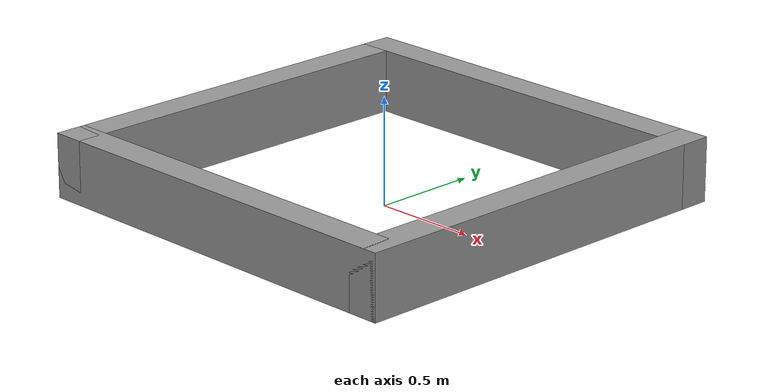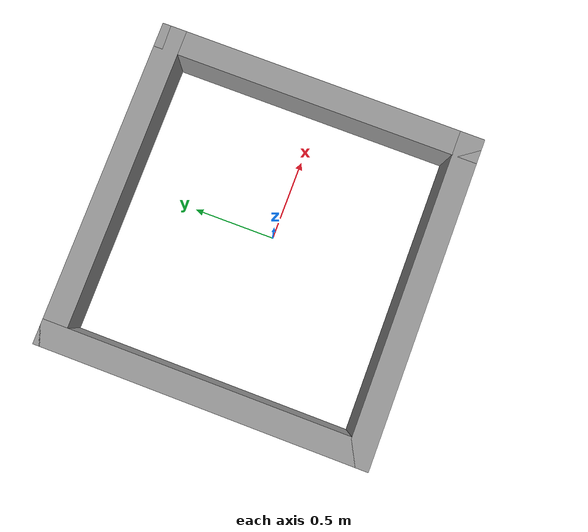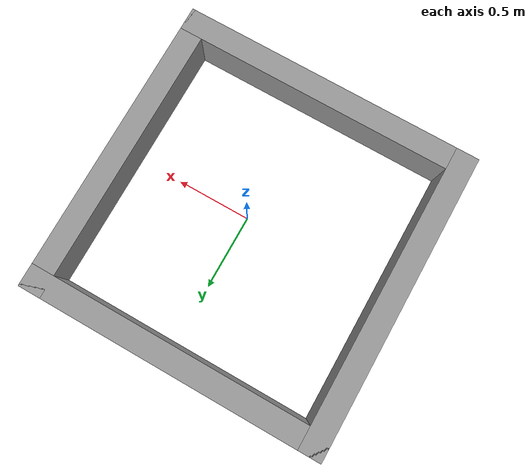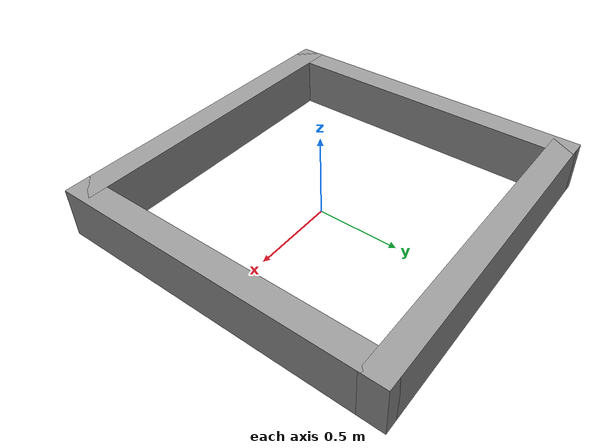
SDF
<?xml version='1.0'?>
<sdf version='1.6'>
  <model name='box'>
    <pose frame=''>-0.065 0.045 0 0 -0 0</pose>
    <link name='Wall_19'>
      <collision name='Wall_19_Collision'>
        <geometry>
          <box>
            <size>2 0.15 0.3</size>
          </box>
        </geometry>
        <pose frame=''>0 0 0.15 0 -0 0</pose>
      </collision>
      <visual name='Wall_19_Visual'>
        <pose frame=''>0 0 0.15 0 -0 0</pose>
        <geometry>
          <box>
            <size>2 0.15 0.3</size>
          </box>
        </geometry>
        <material>
          <script>
            <uri>file://media/materials/scripts/gazebo.material</uri>
            <name>Gazebo/Grey</name>
          </script>
          <ambient>1 1 1 1</ambient>
        </material>
        <meta>
          <layer>0</layer>
        </meta>
      </visual>
      <pose frame=''>0 0.925 0 0 -0 0</pose>
    </link>
    <link name='Wall_25'>
      <collision name='Wall_25_Collision'>
        <geometry>
          <box>
            <size>2 0.15 0.3</size>
          </box>
        </geometry>
        <pose frame=''>0 0 0.15 0 -0 0</pose>
      </collision>
      <visual name='Wall_25_Visual'>
        <pose frame=''>0 0 0.15 0 -0 0</pose>
        <geometry>
          <box>
            <size>2 0.15 0.3</size>
          </box>
        </geometry>
        <material>
          <script>
            <uri>file://media/materials/scripts/gazebo.material</uri>
            <name>Gazebo/Grey</name>
          </script>
          <ambient>1 1 1 1</ambient>
        </material>
        <meta>
          <layer>0</layer>
        </meta>
      </visual>
      <pose frame=''>-0.925 0 0 0 -0 -1.5708</pose>
    </link>
    <link name='Wall_26'>
      <collision name='Wall_26_Collision'>
        <geometry>
          <box>
            <size>2 0.15 0.3</size>
          </box>
        </geometry>
        <pose frame=''>0 0 0.15 0 -0 0</pose>
      </collision>
      <visual name='Wall_26_Visual'>
        <pose frame=''>0 0 0.15 0 -0 0</pose>
        <geometry>
          <box>
            <size>2 0.15 0.3</size>
          </box>
        </geometry>
        <material>
          <script>
            <uri>file://media/materials/scripts/gazebo.material</uri>
            <name>Gazebo/Grey</name>
          </script>
          <ambient>1 1 1 1</ambient>
        </material>
        <meta>
          <layer>0</layer>
        </meta>
      </visual>
      <pose frame=''>0 -0.925 0 0 -0 0</pose>
    </link>
    <link name='Wall_27'>
      <collision name='Wall_27_Collision'>
        <geometry>
          <box>
            <size>2 0.15 0.3</size>
          </box>
        </geometry>
        <pose frame=''>0 0 0.15 0 -0 0</pose>
      </collision>
      <visual name='Wall_27_Visual'>
        <pose frame=''>0 0 0.15 0 -0 0</pose>
        <geometry>
          <box>
            <size>2 0.15 0.3</size>
          </box>
        </geometry>
        <material>
          <script>
            <uri>file://media/materials/scripts/gazebo.material</uri>
            <name>Gazebo/Grey</name>
          </script>
          <ambient>1 1 1 1</ambient>
        </material>
        <meta>
          <layer>0</layer>
        </meta>
      </visual>
      <pose frame=''>0.925 0 0 0 -0 1.5708</pose>
    </link>
    <static>1</static>
  </model>
</sdf>
